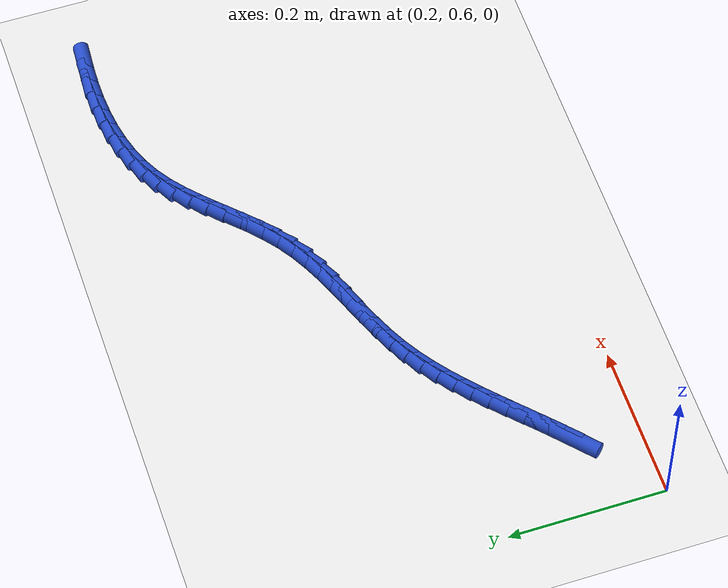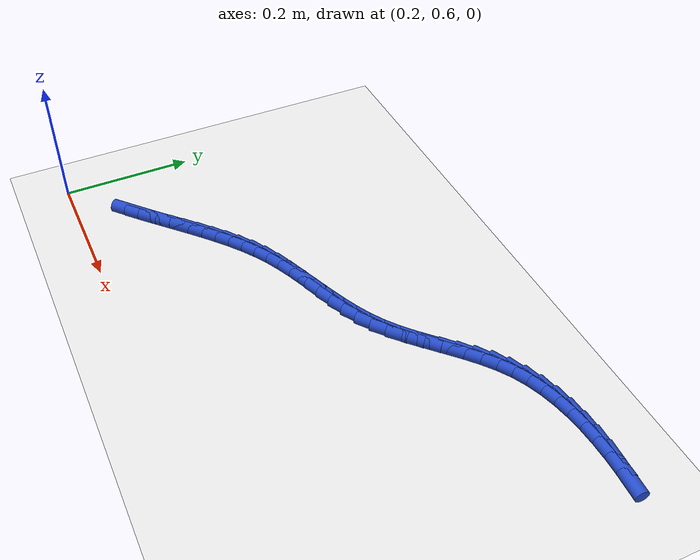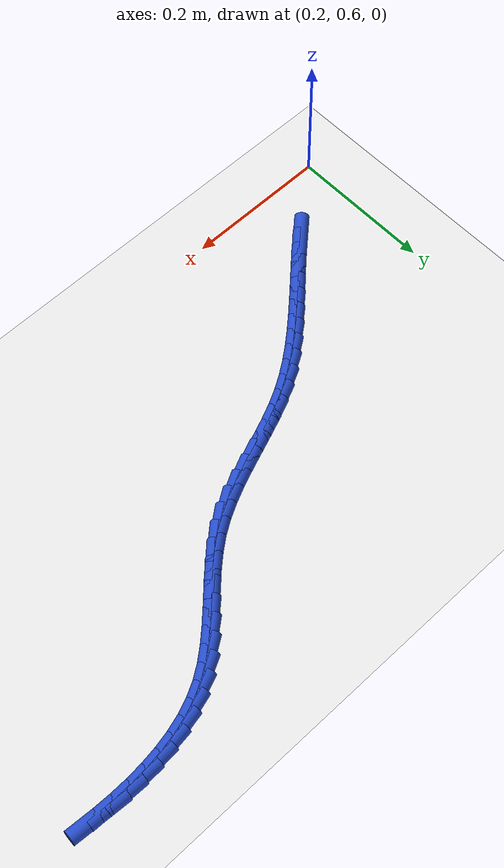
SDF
<sdf version="1.6">
 <world name="default">
  <model name="ground_plane">
   <static>1</static>
   <link name="link">
    <collision name="collision">
     <geometry><plane><normal>0 0 1</normal><size>100 100</size></plane></geometry>
     <surface><friction><ode><mu>100</mu><mu2>50</mu2></ode></friction></surface>
    </collision>
    <visual name="visual">
     <cast_shadows>0</cast_shadows>
     <geometry><plane><normal>0 0 1</normal><size>100 100</size></plane></geometry>
     <material>
      <script><uri>file://media/materials/scripts/gazebo.material</uri><name>Gazebo/WhiteGlow</name></script>
     </material>
    </visual>
   </link>
  </model>
  <model name="line">
   <link name="link_33">
    <pose>0.3008717657688238 0.6857374516433993 0.01 0 1.57 0.7349222147536127</pose>
    <collision name="collision">
     <geometry><cylinder><radius>0.01</radius><length>0.08</length></cylinder></geometry>
    </collision>
    <visual name="visual">
     <material>
      <script><name>Gazebo/Blue</name><uri>file://media/materials/scripts/gazebo.material</uri></script>
     </material>
     <geometry><cylinder><radius>0.01</radius><length>0.08</length></cylinder></geometry>
    </visual>
   </link>
   <link name="link_34">
    <pose>0.31887938649303904 0.7020131196922386 0.01 0 1.57 0.7518350208697102</pose>
    <collision name="collision">
     <geometry><cylinder><radius>0.01</radius><length>0.08</length></cylinder></geometry>
    </collision>
    <visual name="visual">
     <material>
      <script><name>Gazebo/Blue</name><uri>file://media/materials/scripts/gazebo.material</uri></script>
     </material>
     <geometry><cylinder><radius>0.01</radius><length>0.08</length></cylinder></geometry>
    </visual>
   </link>
   <link name="link_35">
    <pose>0.3365555710719802 0.7185408810977232 0.01 0 1.57 0.7594019379892776</pose>
    <collision name="collision">
     <geometry><cylinder><radius>0.01</radius><length>0.08</length></cylinder></geometry>
    </collision>
    <visual name="visual">
     <material>
      <script><name>Gazebo/Blue</name><uri>file://media/materials/scripts/gazebo.material</uri></script>
     </material>
     <geometry><cylinder><radius>0.01</radius><length>0.08</length></cylinder></geometry>
    </visual>
   </link>
   <link name="link_36">
    <pose>0.3540398539644912 0.7351389517995893 0.01 0 1.57 0.7575350575067379</pose>
    <collision name="collision">
     <geometry><cylinder><radius>0.01</radius><length>0.08</length></cylinder></geometry>
    </collision>
    <visual name="visual">
     <material>
      <script><name>Gazebo/Blue</name><uri>file://media/materials/scripts/gazebo.material</uri></script>
     </material>
     <geometry><cylinder><radius>0.01</radius><length>0.08</length></cylinder></geometry>
    </visual>
   </link>
   <link name="link_37">
    <pose>0.3714717696294159 0.7516255477375732 0.01 0 1.57 0.7460932719653166</pose>
    <collision name="collision">
     <geometry><cylinder><radius>0.01</radius><length>0.08</length></cylinder></geometry>
    </collision>
    <visual name="visual">
     <material>
      <script><name>Gazebo/Blue</name><uri>file://media/materials/scripts/gazebo.material</uri></script>
     </material>
     <geometry><cylinder><radius>0.01</radius><length>0.08</length></cylinder></geometry>
    </visual>
   </link>
   <link name="link_38">
    <pose>0.3889908525255979 0.7678188848514105 0.01 0 1.57 0.72488506858001</pose>
    <collision name="collision">
     <geometry><cylinder><radius>0.01</radius><length>0.08</length></cylinder></geometry>
    </collision>
    <visual name="visual">
     <material>
      <script><name>Gazebo/Blue</name><uri>file://media/materials/scripts/gazebo.material</uri></script>
     </material>
     <geometry><cylinder><radius>0.01</radius><length>0.08</length></cylinder></geometry>
    </visual>
   </link>
   <link name="link_39">
    <pose>0.40673663711188124 0.7835371790808379 0.01 0 1.57 0.6936984867668919</pose>
    <collision name="collision">
     <geometry><cylinder><radius>0.01</radius><length>0.08</length></cylinder></geometry>
    </collision>
    <visual name="visual">
     <material>
      <script><name>Gazebo/Blue</name><uri>file://media/materials/scripts/gazebo.material</uri></script>
     </material>
     <geometry><cylinder><radius>0.01</radius><length>0.08</length></cylinder></geometry>
    </visual>
   </link>
   <link name="link_40">
    <pose>0.4248486578471094 0.7985986463655912 0.01 0 1.57 0.6523625248292201</pose>
    <collision name="collision">
     <geometry><cylinder><radius>0.01</radius><length>0.08</length></cylinder></geometry>
    </collision>
    <visual name="visual">
     <material>
      <script><name>Gazebo/Blue</name><uri>file://media/materials/scripts/gazebo.material</uri></script>
     </material>
     <geometry><cylinder><radius>0.01</radius><length>0.08</length></cylinder></geometry>
    </visual>
   </link>
   <link name="link_41">
    <pose>0.4434664491901267 0.8128215026454069 0.01 0 1.57 0.6008435266584947</pose>
    <collision name="collision">
     <geometry><cylinder><radius>0.01</radius><length>0.08</length></cylinder></geometry>
    </collision>
    <visual name="visual">
     <material>
      <script><name>Gazebo/Blue</name><uri>file://media/materials/scripts/gazebo.material</uri></script>
     </material>
     <geometry><cylinder><radius>0.01</radius><length>0.08</length></cylinder></geometry>
    </visual>
   </link>
   <link name="link_42">
    <pose>0.4627295455997763 0.8260239638600209 0.01 0 1.57 0.5393743097386239</pose>
    <collision name="collision">
     <geometry><cylinder><radius>0.01</radius><length>0.08</length></cylinder></geometry>
    </collision>
    <visual name="visual">
     <material>
      <script><name>Gazebo/Blue</name><uri>file://media/materials/scripts/gazebo.material</uri></script>
     </material>
     <geometry><cylinder><radius>0.01</radius><length>0.08</length></cylinder></geometry>
    </visual>
   </link>
   <link name="link_43">
    <pose>0.4827774815349023 0.8380242459491689 0.01 0 1.57 0.47217004068230733</pose>
    <collision name="collision">
     <geometry><cylinder><radius>0.01</radius><length>0.08</length></cylinder></geometry>
    </collision>
    <visual name="visual">
     <material>
      <script><name>Gazebo/Blue</name><uri>file://media/materials/scripts/gazebo.material</uri></script>
     </material>
     <geometry><cylinder><radius>0.01</radius><length>0.08</length></cylinder></geometry>
    </visual>
   </link>
   <link name="link_44">
    <pose>0.503702030063177 0.8487103896333908 0.01 0 1.57 0.4186377876868359</pose>
    <collision name="collision">
     <geometry><cylinder><radius>0.01</radius><length>0.08</length></cylinder></geometry>
    </collision>
    <visual name="visual">
     <material>
      <script><name>Gazebo/Blue</name><uri>file://media/materials/scripts/gazebo.material</uri></script>
     </material>
     <geometry><cylinder><radius>0.01</radius><length>0.08</length></cylinder></geometry>
    </visual>
   </link>
   <link name="link_45">
    <pose>0.5253427269471423 0.8583391940405665 0.01 0 1.57 0.384561296786893</pose>
    <collision name="collision">
     <geometry><cylinder><radius>0.01</radius><length>0.08</length></cylinder></geometry>
    </collision>
    <visual name="visual">
     <material>
      <script><name>Gazebo/Blue</name><uri>file://media/materials/scripts/gazebo.material</uri></script>
     </material>
     <geometry><cylinder><radius>0.01</radius><length>0.08</length></cylinder></geometry>
    </visual>
   </link>
   <link name="link_46">
    <pose>0.5474561450837011 0.8672887458860201 0.01 0 1.57 0.3693214571496849</pose>
    <collision name="collision">
     <geometry><cylinder><radius>0.01</radius><length>0.08</length></cylinder></geometry>
    </collision>
    <visual name="visual">
     <material>
      <script><name>Gazebo/Blue</name><uri>file://media/materials/scripts/gazebo.material</uri></script>
     </material>
     <geometry><cylinder><radius>0.01</radius><length>0.08</length></cylinder></geometry>
    </visual>
   </link>
   <link name="link_47">
    <pose>0.569798807389078 0.8759372049543415 0.01 0 1.57 0.37253379139638093</pose>
    <collision name="collision">
     <geometry><cylinder><radius>0.01</radius><length>0.08</length></cylinder></geometry>
    </collision>
    <visual name="visual">
     <material>
      <script><name>Gazebo/Blue</name><uri>file://media/materials/scripts/gazebo.material</uri></script>
     </material>
     <geometry><cylinder><radius>0.01</radius><length>0.08</length></cylinder></geometry>
    </visual>
   </link>
   <link name="link_48">
    <pose>0.5921272367794974 0.8846627310301204 0.01 0 1.57 0.39419719822216304</pose>
    <collision name="collision">
     <geometry><cylinder><radius>0.01</radius><length>0.08</length></cylinder></geometry>
    </collision>
    <visual name="visual">
     <material>
      <script><name>Gazebo/Blue</name><uri>file://media/materials/scripts/gazebo.material</uri></script>
     </material>
     <geometry><cylinder><radius>0.01</radius><length>0.08</length></cylinder></geometry>
    </visual>
   </link>
   <link name="link_49">
    <pose>0.6141979561711851 0.8938434838979471 0.01 0 1.57 0.4346592966926813</pose>
    <collision name="collision">
     <geometry><cylinder><radius>0.01</radius><length>0.08</length></cylinder></geometry>
    </collision>
    <visual name="visual">
     <material>
      <script><name>Gazebo/Blue</name><uri>file://media/materials/scripts/gazebo.material</uri></script>
     </material>
     <geometry><cylinder><radius>0.01</radius><length>0.08</length></cylinder></geometry>
    </visual>
   </link>
   <link name="link_50">
    <pose>0.6357674884803659 0.9038576233424114 0.01 0 1.57 0.4943989613907703</pose>
    <collision name="collision">
     <geometry><cylinder><radius>0.01</radius><length>0.08</length></cylinder></geometry>
    </collision>
    <visual name="visual">
     <material>
      <script><name>Gazebo/Blue</name><uri>file://media/materials/scripts/gazebo.material</uri></script>
     </material>
     <geometry><cylinder><radius>0.01</radius><length>0.08</length></cylinder></geometry>
    </visual>
   </link>
   <link name="link_51">
    <pose>0.6565923566232643 0.9150833091481029 0.01 0 1.57 0.5735758471489856</pose>
    <collision name="collision">
     <geometry><cylinder><radius>0.01</radius><length>0.08</length></cylinder></geometry>
    </collision>
    <visual name="visual">
     <material>
      <script><name>Gazebo/Blue</name><uri>file://media/materials/scripts/gazebo.material</uri></script>
     </material>
     <geometry><cylinder><radius>0.01</radius><length>0.08</length></cylinder></geometry>
    </visual>
   </link>
   <link name="link_52">
    <pose>0.6764292451110925 0.9278984372863254 0.01 0 1.57 0.6610452300955282</pose>
    <collision name="collision">
     <geometry><cylinder><radius>0.01</radius><length>0.08</length></cylinder></geometry>
    </collision>
    <visual name="visual">
     <material>
      <script><name>Gazebo/Blue</name><uri>file://media/materials/scripts/gazebo.material</uri></script>
     </material>
     <geometry><cylinder><radius>0.01</radius><length>0.08</length></cylinder></geometry>
    </visual>
   </link>
   <link name="link_53">
    <pose>0.6951640268208855 0.9424699961496759 0.01 0 1.57 0.7269939341002235</pose>
    <collision name="collision">
     <geometry><cylinder><radius>0.01</radius><length>0.08</length></cylinder></geometry>
    </collision>
    <visual name="visual">
     <material>
      <script><name>Gazebo/Blue</name><uri>file://media/materials/scripts/gazebo.material</uri></script>
     </material>
     <geometry><cylinder><radius>0.01</radius><length>0.08</length></cylinder></geometry>
    </visual>
   </link>
   <link name="link_54">
    <pose>0.7130441440453452 0.958374690868741 0.01 0 1.57 0.7670843107040698</pose>
    <collision name="collision">
     <geometry><cylinder><radius>0.01</radius><length>0.08</length></cylinder></geometry>
    </collision>
    <visual name="visual">
     <material>
      <script><name>Gazebo/Blue</name><uri>file://media/materials/scripts/gazebo.material</uri></script>
     </material>
     <geometry><cylinder><radius>0.01</radius><length>0.08</length></cylinder></geometry>
    </visual>
   </link>
   <link name="link_55">
    <pose>0.7303798127500479 0.9750867448740865 0.01 0 1.57 0.7822364435346553</pose>
    <collision name="collision">
     <geometry><cylinder><radius>0.01</radius><length>0.08</length></cylinder></geometry>
    </collision>
    <visual name="visual">
     <material>
      <script><name>Gazebo/Blue</name><uri>file://media/materials/scripts/gazebo.material</uri></script>
     </material>
     <geometry><cylinder><radius>0.01</radius><length>0.08</length></cylinder></geometry>
    </visual>
   </link>
   <link name="link_56">
    <pose>0.7474812489005696 0.9920803815962782 0.01 0 1.57 0.7727841471737972</pose>
    <collision name="collision">
     <geometry><cylinder><radius>0.01</radius><length>0.08</length></cylinder></geometry>
    </collision>
    <visual name="visual">
     <material>
      <script><name>Gazebo/Blue</name><uri>file://media/materials/scripts/gazebo.material</uri></script>
     </material>
     <geometry><cylinder><radius>0.01</radius><length>0.08</length></cylinder></geometry>
    </visual>
   </link>
   <link name="link_57">
    <pose>0.7646586684624863 1.0088298244658824 0.01 0 1.57 0.7382060223441684</pose>
    <collision name="collision">
     <geometry><cylinder><radius>0.01</radius><length>0.08</length></cylinder></geometry>
    </collision>
    <visual name="visual">
     <material>
      <script><name>Gazebo/Blue</name><uri>file://media/materials/scripts/gazebo.material</uri></script>
     </material>
     <geometry><cylinder><radius>0.01</radius><length>0.08</length></cylinder></geometry>
    </visual>
   </link>
   <link name="link_58">
    <pose>0.7822222874013742 1.0248092969134652 0.01 0 1.57 0.6772636147150964</pose>
    <collision name="collision">
     <geometry><cylinder><radius>0.01</radius><length>0.08</length></cylinder></geometry>
    </collision>
    <visual name="visual">
     <material>
      <script><name>Gazebo/Blue</name><uri>file://media/materials/scripts/gazebo.material</uri></script>
     </material>
     <geometry><cylinder><radius>0.01</radius><length>0.08</length></cylinder></geometry>
    </visual>
   </link>
   <link name="link_59">
    <pose>0.8004823216828095 1.0394930223695928 0.01 0 1.57 0.5886416760123346</pose>
    <collision name="collision">
     <geometry><cylinder><radius>0.01</radius><length>0.08</length></cylinder></geometry>
    </collision>
    <visual name="visual">
     <material>
      <script><name>Gazebo/Blue</name><uri>file://media/materials/scripts/gazebo.material</uri></script>
     </material>
     <geometry><cylinder><radius>0.01</radius><length>0.08</length></cylinder></geometry>
    </visual>
   </link>
   <link name="link_60">
    <pose>0.8197489710003054 1.0523552479648886 0.01 0 1.57 0.47943375359117796</pose>
    <collision name="collision">
     <geometry><cylinder><radius>0.01</radius><length>0.08</length></cylinder></geometry>
    </collision>
    <visual name="visual">
     <material>
      <script><name>Gazebo/Blue</name><uri>file://media/materials/scripts/gazebo.material</uri></script>
     </material>
     <geometry><cylinder><radius>0.01</radius><length>0.08</length></cylinder></geometry>
    </visual>
   </link>
   <link name="link_61">
    <pose>0.8402382265067176 1.0630074344011355 0.01 0 1.57 0.37527042201556676</pose>
    <collision name="collision">
     <geometry><cylinder><radius>0.01</radius><length>0.08</length></cylinder></geometry>
    </collision>
    <visual name="visual">
     <material>
      <script><name>Gazebo/Blue</name><uri>file://media/materials/scripts/gazebo.material</uri></script>
     </material>
     <geometry><cylinder><radius>0.01</radius><length>0.08</length></cylinder></geometry>
    </visual>
   </link>
   <link name="link_62">
    <pose>0.8618501376412108 1.07152120756802 0.01 0 1.57 0.2821956567172087</pose>
    <collision name="collision">
     <geometry><cylinder><radius>0.01</radius><length>0.08</length></cylinder></geometry>
    </collision>
    <visual name="visual">
     <material>
      <script><name>Gazebo/Blue</name><uri>file://media/materials/scripts/gazebo.material</uri></script>
     </material>
     <geometry><cylinder><radius>0.01</radius><length>0.08</length></cylinder></geometry>
    </visual>
   </link>
   <link name="link_63">
    <pose>0.8844185971976646 1.0780645496886567 0.01 0 1.57 0.20023888609111884</pose>
    <collision name="collision">
     <geometry><cylinder><radius>0.01</radius><length>0.08</length></cylinder></geometry>
    </collision>
    <visual name="visual">
     <material>
      <script><name>Gazebo/Blue</name><uri>file://media/materials/scripts/gazebo.material</uri></script>
     </material>
     <geometry><cylinder><radius>0.01</radius><length>0.08</length></cylinder></geometry>
    </visual>
   </link>
   <link name="link_64">
    <pose>0.9077774979699577 1.0828054429861602 0.01 0 1.57 0.12880779649803828</pose>
    <collision name="collision">
     <geometry><cylinder><radius>0.01</radius><length>0.08</length></cylinder></geometry>
    </collision>
    <visual name="visual">
     <material>
      <script><name>Gazebo/Blue</name><uri>file://media/materials/scripts/gazebo.material</uri></script>
     </material>
     <geometry><cylinder><radius>0.01</radius><length>0.08</length></cylinder></geometry>
    </visual>
   </link>
   <link name="link_65">
    <pose>0.9317607327519702 1.0859118696836458 0.01 0 1.57 0.06699631892306823</pose>
    <collision name="collision">
     <geometry><cylinder><radius>0.01</radius><length>0.08</length></cylinder></geometry>
    </collision>
    <visual name="visual">
     <material>
      <script><name>Gazebo/Blue</name><uri>file://media/materials/scripts/gazebo.material</uri></script>
     </material>
     <geometry><cylinder><radius>0.01</radius><length>0.08</length></cylinder></geometry>
    </visual>
   </link>
   <link name="link_66">
    <pose>0.9562021943375816 1.0875518120042293 0.01 0 1.57 0.0138038433373542</pose>
    <collision name="collision">
     <geometry><cylinder><radius>0.01</radius><length>0.08</length></cylinder></geometry>
    </collision>
    <visual name="visual">
     <material>
      <script><name>Gazebo/Blue</name><uri>file://media/materials/scripts/gazebo.material</uri></script>
     </material>
     <geometry><cylinder><radius>0.01</radius><length>0.08</length></cylinder></geometry>
    </visual>
   </link>
   <link name="link_67">
    <pose>0.9809357755206707 1.0878932521710243 0.01 0 1.57 -0.03173080513151163</pose>
    <collision name="collision">
     <geometry><cylinder><radius>0.01</radius><length>0.08</length></cylinder></geometry>
    </collision>
    <visual name="visual">
     <material>
      <script><name>Gazebo/Blue</name><uri>file://media/materials/scripts/gazebo.material</uri></script>
     </material>
     <geometry><cylinder><radius>0.01</radius><length>0.08</length></cylinder></geometry>
    </visual>
   </link>
   <link name="link_68">
    <pose>1.0057953690951176 1.0871041724071469 0.01 0 1.57 -0.07045742705025772</pose>
    <collision name="collision">
     <geometry><cylinder><radius>0.01</radius><length>0.08</length></cylinder></geometry>
    </collision>
    <visual name="visual">
     <material>
      <script><name>Gazebo/Blue</name><uri>file://media/materials/scripts/gazebo.material</uri></script>
     </material>
     <geometry><cylinder><radius>0.01</radius><length>0.08</length></cylinder></geometry>
    </visual>
   </link>
  </model>
 </world>
</sdf>
